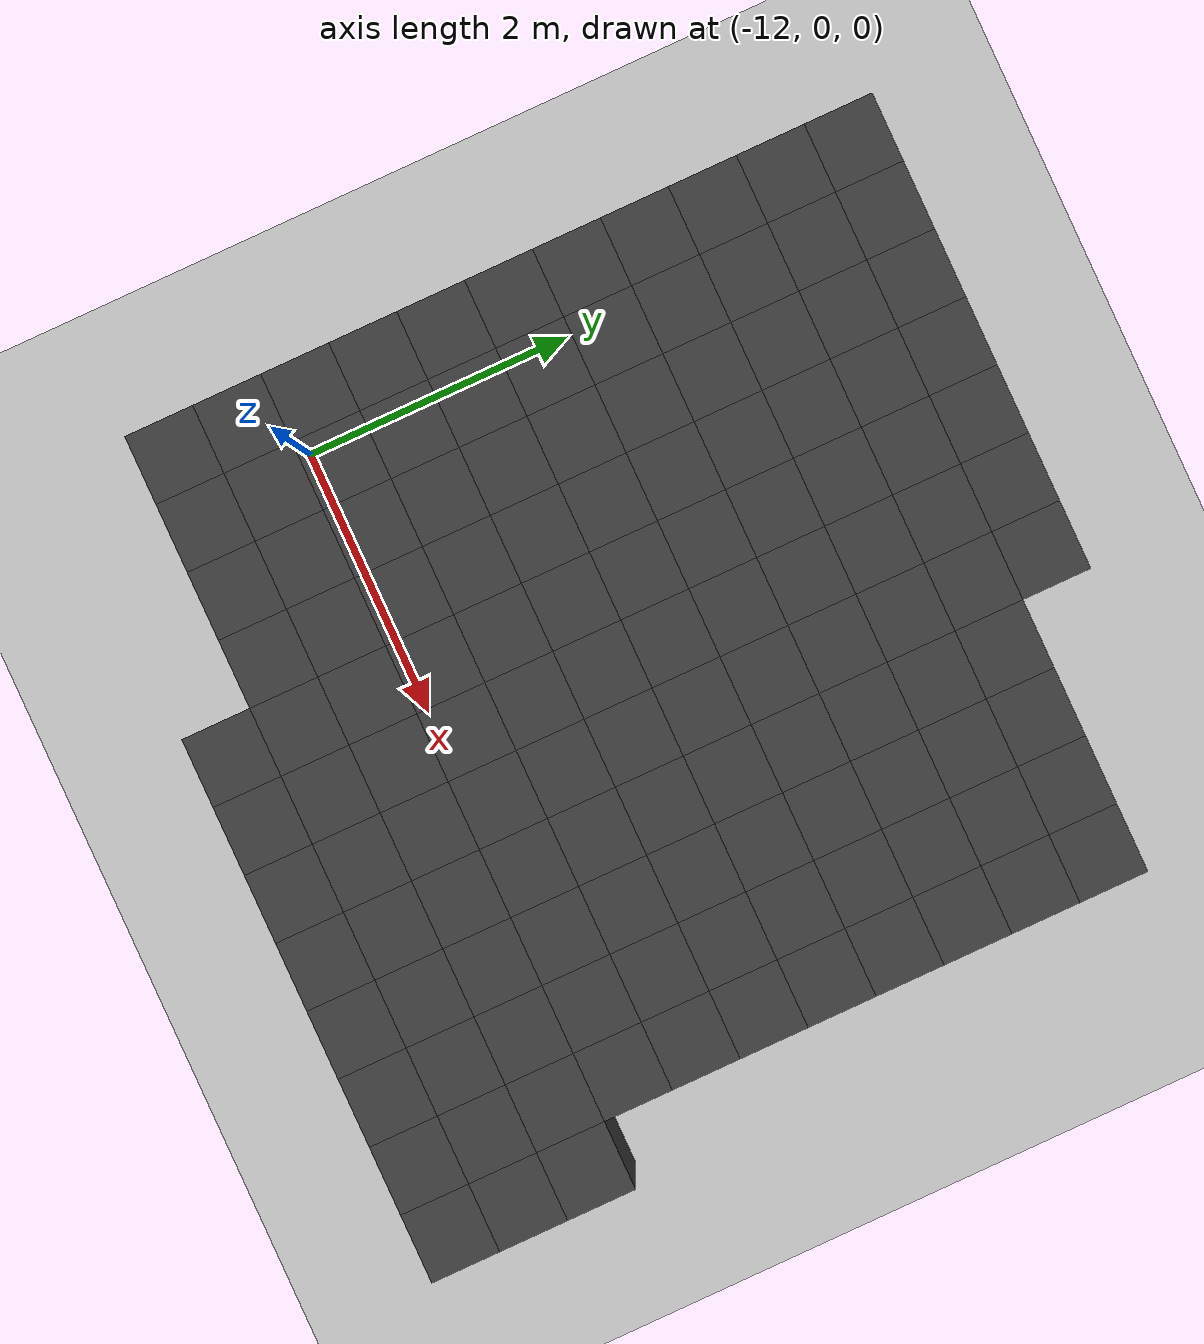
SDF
<sdf version="1.7">
 <world name="map_11672">
  <model name="ground_plane">
   <static>true</static>
   <link name="link">
    <collision name="collision">
     <geometry><plane><normal>0 0 1</normal><size>200 200</size></plane></geometry>
    </collision>
    <visual name="visual">
     <geometry><plane><normal>0 0 1</normal><size>200 200</size></plane></geometry>
     <material><ambient>0.8 0.8 0.8 1</ambient><diffuse>0.8 0.8 0.8 1</diffuse></material>
    </visual>
   </link>
  </model>
  <model name="maze_environment">
   <static>true</static>
   <link name="wall_625">
    <pose>-12.250 4.250 0.500 0 0 0</pose>
    <collision name="col"><geometry><box><size>0.5 0.5 1.0</size></box></geometry></collision>
    <visual name="vis">
     <geometry><box><size>0.5 0.5 1.0</size></box></geometry>
     <material><ambient>0.15 0.15 0.15 1</ambient><diffuse>0.25 0.25 0.25 1</diffuse></material>
    </visual>
   </link>
   <link name="wall_626">
    <pose>-11.750 4.250 0.500 0 0 0</pose>
    <collision name="col"><geometry><box><size>0.5 0.5 1.0</size></box></geometry></collision>
    <visual name="vis">
     <geometry><box><size>0.5 0.5 1.0</size></box></geometry>
     <material><ambient>0.15 0.15 0.15 1</ambient><diffuse>0.25 0.25 0.25 1</diffuse></material>
    </visual>
   </link>
   <link name="wall_627">
    <pose>-11.250 4.250 0.500 0 0 0</pose>
    <collision name="col"><geometry><box><size>0.5 0.5 1.0</size></box></geometry></collision>
    <visual name="vis">
     <geometry><box><size>0.5 0.5 1.0</size></box></geometry>
     <material><ambient>0.15 0.15 0.15 1</ambient><diffuse>0.25 0.25 0.25 1</diffuse></material>
    </visual>
   </link>
   <link name="wall_628">
    <pose>-10.750 4.250 0.500 0 0 0</pose>
    <collision name="col"><geometry><box><size>0.5 0.5 1.0</size></box></geometry></collision>
    <visual name="vis">
     <geometry><box><size>0.5 0.5 1.0</size></box></geometry>
     <material><ambient>0.15 0.15 0.15 1</ambient><diffuse>0.25 0.25 0.25 1</diffuse></material>
    </visual>
   </link>
   <link name="wall_629">
    <pose>-10.250 4.250 0.500 0 0 0</pose>
    <collision name="col"><geometry><box><size>0.5 0.5 1.0</size></box></geometry></collision>
    <visual name="vis">
     <geometry><box><size>0.5 0.5 1.0</size></box></geometry>
     <material><ambient>0.15 0.15 0.15 1</ambient><diffuse>0.25 0.25 0.25 1</diffuse></material>
    </visual>
   </link>
   <link name="wall_630">
    <pose>-9.750 4.250 0.500 0 0 0</pose>
    <collision name="col"><geometry><box><size>0.5 0.5 1.0</size></box></geometry></collision>
    <visual name="vis">
     <geometry><box><size>0.5 0.5 1.0</size></box></geometry>
     <material><ambient>0.15 0.15 0.15 1</ambient><diffuse>0.25 0.25 0.25 1</diffuse></material>
    </visual>
   </link>
   <link name="wall_631">
    <pose>-9.250 4.250 0.500 0 0 0</pose>
    <collision name="col"><geometry><box><size>0.5 0.5 1.0</size></box></geometry></collision>
    <visual name="vis">
     <geometry><box><size>0.5 0.5 1.0</size></box></geometry>
     <material><ambient>0.15 0.15 0.15 1</ambient><diffuse>0.25 0.25 0.25 1</diffuse></material>
    </visual>
   </link>
   <link name="wall_664">
    <pose>-12.250 3.750 0.500 0 0 0</pose>
    <collision name="col"><geometry><box><size>0.5 0.5 1.0</size></box></geometry></collision>
    <visual name="vis">
     <geometry><box><size>0.5 0.5 1.0</size></box></geometry>
     <material><ambient>0.15 0.15 0.15 1</ambient><diffuse>0.25 0.25 0.25 1</diffuse></material>
    </visual>
   </link>
   <link name="wall_665">
    <pose>-11.750 3.750 0.500 0 0 0</pose>
    <collision name="col"><geometry><box><size>0.5 0.5 1.0</size></box></geometry></collision>
    <visual name="vis">
     <geometry><box><size>0.5 0.5 1.0</size></box></geometry>
     <material><ambient>0.15 0.15 0.15 1</ambient><diffuse>0.25 0.25 0.25 1</diffuse></material>
    </visual>
   </link>
   <link name="wall_666">
    <pose>-11.250 3.750 0.500 0 0 0</pose>
    <collision name="col"><geometry><box><size>0.5 0.5 1.0</size></box></geometry></collision>
    <visual name="vis">
     <geometry><box><size>0.5 0.5 1.0</size></box></geometry>
     <material><ambient>0.15 0.15 0.15 1</ambient><diffuse>0.25 0.25 0.25 1</diffuse></material>
    </visual>
   </link>
   <link name="wall_667">
    <pose>-10.750 3.750 0.500 0 0 0</pose>
    <collision name="col"><geometry><box><size>0.5 0.5 1.0</size></box></geometry></collision>
    <visual name="vis">
     <geometry><box><size>0.5 0.5 1.0</size></box></geometry>
     <material><ambient>0.15 0.15 0.15 1</ambient><diffuse>0.25 0.25 0.25 1</diffuse></material>
    </visual>
   </link>
   <link name="wall_668">
    <pose>-10.250 3.750 0.500 0 0 0</pose>
    <collision name="col"><geometry><box><size>0.5 0.5 1.0</size></box></geometry></collision>
    <visual name="vis">
     <geometry><box><size>0.5 0.5 1.0</size></box></geometry>
     <material><ambient>0.15 0.15 0.15 1</ambient><diffuse>0.25 0.25 0.25 1</diffuse></material>
    </visual>
   </link>
   <link name="wall_669">
    <pose>-9.750 3.750 0.500 0 0 0</pose>
    <collision name="col"><geometry><box><size>0.5 0.5 1.0</size></box></geometry></collision>
    <visual name="vis">
     <geometry><box><size>0.5 0.5 1.0</size></box></geometry>
     <material><ambient>0.15 0.15 0.15 1</ambient><diffuse>0.25 0.25 0.25 1</diffuse></material>
    </visual>
   </link>
   <link name="wall_670">
    <pose>-9.250 3.750 0.500 0 0 0</pose>
    <collision name="col"><geometry><box><size>0.5 0.5 1.0</size></box></geometry></collision>
    <visual name="vis">
     <geometry><box><size>0.5 0.5 1.0</size></box></geometry>
     <material><ambient>0.15 0.15 0.15 1</ambient><diffuse>0.25 0.25 0.25 1</diffuse></material>
    </visual>
   </link>
   <link name="wall_671">
    <pose>-8.750 3.750 0.500 0 0 0</pose>
    <collision name="col"><geometry><box><size>0.5 0.5 1.0</size></box></geometry></collision>
    <visual name="vis">
     <geometry><box><size>0.5 0.5 1.0</size></box></geometry>
     <material><ambient>0.15 0.15 0.15 1</ambient><diffuse>0.25 0.25 0.25 1</diffuse></material>
    </visual>
   </link>
   <link name="wall_672">
    <pose>-8.250 3.750 0.500 0 0 0</pose>
    <collision name="col"><geometry><box><size>0.5 0.5 1.0</size></box></geometry></collision>
    <visual name="vis">
     <geometry><box><size>0.5 0.5 1.0</size></box></geometry>
     <material><ambient>0.15 0.15 0.15 1</ambient><diffuse>0.25 0.25 0.25 1</diffuse></material>
    </visual>
   </link>
   <link name="wall_673">
    <pose>-7.750 3.750 0.500 0 0 0</pose>
    <collision name="col"><geometry><box><size>0.5 0.5 1.0</size></box></geometry></collision>
    <visual name="vis">
     <geometry><box><size>0.5 0.5 1.0</size></box></geometry>
     <material><ambient>0.15 0.15 0.15 1</ambient><diffuse>0.25 0.25 0.25 1</diffuse></material>
    </visual>
   </link>
   <link name="wall_674">
    <pose>-7.250 3.750 0.500 0 0 0</pose>
    <collision name="col"><geometry><box><size>0.5 0.5 1.0</size></box></geometry></collision>
    <visual name="vis">
     <geometry><box><size>0.5 0.5 1.0</size></box></geometry>
     <material><ambient>0.15 0.15 0.15 1</ambient><diffuse>0.25 0.25 0.25 1</diffuse></material>
    </visual>
   </link>
   <link name="wall_708">
    <pose>-12.250 3.250 0.500 0 0 0</pose>
    <collision name="col"><geometry><box><size>0.5 0.5 1.0</size></box></geometry></collision>
    <visual name="vis">
     <geometry><box><size>0.5 0.5 1.0</size></box></geometry>
     <material><ambient>0.15 0.15 0.15 1</ambient><diffuse>0.25 0.25 0.25 1</diffuse></material>
    </visual>
   </link>
   <link name="wall_709">
    <pose>-11.750 3.250 0.500 0 0 0</pose>
    <collision name="col"><geometry><box><size>0.5 0.5 1.0</size></box></geometry></collision>
    <visual name="vis">
     <geometry><box><size>0.5 0.5 1.0</size></box></geometry>
     <material><ambient>0.15 0.15 0.15 1</ambient><diffuse>0.25 0.25 0.25 1</diffuse></material>
    </visual>
   </link>
   <link name="wall_710">
    <pose>-11.250 3.250 0.500 0 0 0</pose>
    <collision name="col"><geometry><box><size>0.5 0.5 1.0</size></box></geometry></collision>
    <visual name="vis">
     <geometry><box><size>0.5 0.5 1.0</size></box></geometry>
     <material><ambient>0.15 0.15 0.15 1</ambient><diffuse>0.25 0.25 0.25 1</diffuse></material>
    </visual>
   </link>
   <link name="wall_711">
    <pose>-10.750 3.250 0.500 0 0 0</pose>
    <collision name="col"><geometry><box><size>0.5 0.5 1.0</size></box></geometry></collision>
    <visual name="vis">
     <geometry><box><size>0.5 0.5 1.0</size></box></geometry>
     <material><ambient>0.15 0.15 0.15 1</ambient><diffuse>0.25 0.25 0.25 1</diffuse></material>
    </visual>
   </link>
   <link name="wall_712">
    <pose>-10.250 3.250 0.500 0 0 0</pose>
    <collision name="col"><geometry><box><size>0.5 0.5 1.0</size></box></geometry></collision>
    <visual name="vis">
     <geometry><box><size>0.5 0.5 1.0</size></box></geometry>
     <material><ambient>0.15 0.15 0.15 1</ambient><diffuse>0.25 0.25 0.25 1</diffuse></material>
    </visual>
   </link>
   <link name="wall_713">
    <pose>-9.750 3.250 0.500 0 0 0</pose>
    <collision name="col"><geometry><box><size>0.5 0.5 1.0</size></box></geometry></collision>
    <visual name="vis">
     <geometry><box><size>0.5 0.5 1.0</size></box></geometry>
     <material><ambient>0.15 0.15 0.15 1</ambient><diffuse>0.25 0.25 0.25 1</diffuse></material>
    </visual>
   </link>
   <link name="wall_714">
    <pose>-9.250 3.250 0.500 0 0 0</pose>
    <collision name="col"><geometry><box><size>0.5 0.5 1.0</size></box></geometry></collision>
    <visual name="vis">
     <geometry><box><size>0.5 0.5 1.0</size></box></geometry>
     <material><ambient>0.15 0.15 0.15 1</ambient><diffuse>0.25 0.25 0.25 1</diffuse></material>
    </visual>
   </link>
   <link name="wall_715">
    <pose>-8.750 3.250 0.500 0 0 0</pose>
    <collision name="col"><geometry><box><size>0.5 0.5 1.0</size></box></geometry></collision>
    <visual name="vis">
     <geometry><box><size>0.5 0.5 1.0</size></box></geometry>
     <material><ambient>0.15 0.15 0.15 1</ambient><diffuse>0.25 0.25 0.25 1</diffuse></material>
    </visual>
   </link>
   <link name="wall_716">
    <pose>-8.250 3.250 0.500 0 0 0</pose>
    <collision name="col"><geometry><box><size>0.5 0.5 1.0</size></box></geometry></collision>
    <visual name="vis">
     <geometry><box><size>0.5 0.5 1.0</size></box></geometry>
     <material><ambient>0.15 0.15 0.15 1</ambient><diffuse>0.25 0.25 0.25 1</diffuse></material>
    </visual>
   </link>
   <link name="wall_717">
    <pose>-7.750 3.250 0.500 0 0 0</pose>
    <collision name="col"><geometry><box><size>0.5 0.5 1.0</size></box></geometry></collision>
    <visual name="vis">
     <geometry><box><size>0.5 0.5 1.0</size></box></geometry>
     <material><ambient>0.15 0.15 0.15 1</ambient><diffuse>0.25 0.25 0.25 1</diffuse></material>
    </visual>
   </link>
   <link name="wall_718">
    <pose>-7.250 3.250 0.500 0 0 0</pose>
    <collision name="col"><geometry><box><size>0.5 0.5 1.0</size></box></geometry></collision>
    <visual name="vis">
     <geometry><box><size>0.5 0.5 1.0</size></box></geometry>
     <material><ambient>0.15 0.15 0.15 1</ambient><diffuse>0.25 0.25 0.25 1</diffuse></material>
    </visual>
   </link>
   <link name="wall_748">
    <pose>-12.250 2.750 0.500 0 0 0</pose>
    <collision name="col"><geometry><box><size>0.5 0.5 1.0</size></box></geometry></collision>
    <visual name="vis">
     <geometry><box><size>0.5 0.5 1.0</size></box></geometry>
     <material><ambient>0.15 0.15 0.15 1</ambient><diffuse>0.25 0.25 0.25 1</diffuse></material>
    </visual>
   </link>
   <link name="wall_749">
    <pose>-11.750 2.750 0.500 0 0 0</pose>
    <collision name="col"><geometry><box><size>0.5 0.5 1.0</size></box></geometry></collision>
    <visual name="vis">
     <geometry><box><size>0.5 0.5 1.0</size></box></geometry>
     <material><ambient>0.15 0.15 0.15 1</ambient><diffuse>0.25 0.25 0.25 1</diffuse></material>
    </visual>
   </link>
   <link name="wall_750">
    <pose>-11.250 2.750 0.500 0 0 0</pose>
    <collision name="col"><geometry><box><size>0.5 0.5 1.0</size></box></geometry></collision>
    <visual name="vis">
     <geometry><box><size>0.5 0.5 1.0</size></box></geometry>
     <material><ambient>0.15 0.15 0.15 1</ambient><diffuse>0.25 0.25 0.25 1</diffuse></material>
    </visual>
   </link>
   <link name="wall_751">
    <pose>-10.750 2.750 0.500 0 0 0</pose>
    <collision name="col"><geometry><box><size>0.5 0.5 1.0</size></box></geometry></collision>
    <visual name="vis">
     <geometry><box><size>0.5 0.5 1.0</size></box></geometry>
     <material><ambient>0.15 0.15 0.15 1</ambient><diffuse>0.25 0.25 0.25 1</diffuse></material>
    </visual>
   </link>
   <link name="wall_752">
    <pose>-10.250 2.750 0.500 0 0 0</pose>
    <collision name="col"><geometry><box><size>0.5 0.5 1.0</size></box></geometry></collision>
    <visual name="vis">
     <geometry><box><size>0.5 0.5 1.0</size></box></geometry>
     <material><ambient>0.15 0.15 0.15 1</ambient><diffuse>0.25 0.25 0.25 1</diffuse></material>
    </visual>
   </link>
   <link name="wall_753">
    <pose>-9.750 2.750 0.500 0 0 0</pose>
    <collision name="col"><geometry><box><size>0.5 0.5 1.0</size></box></geometry></collision>
    <visual name="vis">
     <geometry><box><size>0.5 0.5 1.0</size></box></geometry>
     <material><ambient>0.15 0.15 0.15 1</ambient><diffuse>0.25 0.25 0.25 1</diffuse></material>
    </visual>
   </link>
   <link name="wall_754">
    <pose>-9.250 2.750 0.500 0 0 0</pose>
    <collision name="col"><geometry><box><size>0.5 0.5 1.0</size></box></geometry></collision>
    <visual name="vis">
     <geometry><box><size>0.5 0.5 1.0</size></box></geometry>
     <material><ambient>0.15 0.15 0.15 1</ambient><diffuse>0.25 0.25 0.25 1</diffuse></material>
    </visual>
   </link>
   <link name="wall_755">
    <pose>-8.750 2.750 0.500 0 0 0</pose>
    <collision name="col"><geometry><box><size>0.5 0.5 1.0</size></box></geometry></collision>
    <visual name="vis">
     <geometry><box><size>0.5 0.5 1.0</size></box></geometry>
     <material><ambient>0.15 0.15 0.15 1</ambient><diffuse>0.25 0.25 0.25 1</diffuse></material>
    </visual>
   </link>
   <link name="wall_756">
    <pose>-8.250 2.750 0.500 0 0 0</pose>
    <collision name="col"><geometry><box><size>0.5 0.5 1.0</size></box></geometry></collision>
    <visual name="vis">
     <geometry><box><size>0.5 0.5 1.0</size></box></geometry>
     <material><ambient>0.15 0.15 0.15 1</ambient><diffuse>0.25 0.25 0.25 1</diffuse></material>
    </visual>
   </link>
   <link name="wall_757">
    <pose>-7.750 2.750 0.500 0 0 0</pose>
    <collision name="col"><geometry><box><size>0.5 0.5 1.0</size></box></geometry></collision>
    <visual name="vis">
     <geometry><box><size>0.5 0.5 1.0</size></box></geometry>
     <material><ambient>0.15 0.15 0.15 1</ambient><diffuse>0.25 0.25 0.25 1</diffuse></material>
    </visual>
   </link>
   <link name="wall_758">
    <pose>-7.250 2.750 0.500 0 0 0</pose>
    <collision name="col"><geometry><box><size>0.5 0.5 1.0</size></box></geometry></collision>
    <visual name="vis">
     <geometry><box><size>0.5 0.5 1.0</size></box></geometry>
     <material><ambient>0.15 0.15 0.15 1</ambient><diffuse>0.25 0.25 0.25 1</diffuse></material>
    </visual>
   </link>
   <link name="wall_788">
    <pose>-12.250 2.250 0.500 0 0 0</pose>
    <collision name="col"><geometry><box><size>0.5 0.5 1.0</size></box></geometry></collision>
    <visual name="vis">
     <geometry><box><size>0.5 0.5 1.0</size></box></geometry>
     <material><ambient>0.15 0.15 0.15 1</ambient><diffuse>0.25 0.25 0.25 1</diffuse></material>
    </visual>
   </link>
   <link name="wall_789">
    <pose>-11.750 2.250 0.500 0 0 0</pose>
    <collision name="col"><geometry><box><size>0.5 0.5 1.0</size></box></geometry></collision>
    <visual name="vis">
     <geometry><box><size>0.5 0.5 1.0</size></box></geometry>
     <material><ambient>0.15 0.15 0.15 1</ambient><diffuse>0.25 0.25 0.25 1</diffuse></material>
    </visual>
   </link>
   <link name="wall_790">
    <pose>-11.250 2.250 0.500 0 0 0</pose>
    <collision name="col"><geometry><box><size>0.5 0.5 1.0</size></box></geometry></collision>
    <visual name="vis">
     <geometry><box><size>0.5 0.5 1.0</size></box></geometry>
     <material><ambient>0.15 0.15 0.15 1</ambient><diffuse>0.25 0.25 0.25 1</diffuse></material>
    </visual>
   </link>
   <link name="wall_791">
    <pose>-10.750 2.250 0.500 0 0 0</pose>
    <collision name="col"><geometry><box><size>0.5 0.5 1.0</size></box></geometry></collision>
    <visual name="vis">
     <geometry><box><size>0.5 0.5 1.0</size></box></geometry>
     <material><ambient>0.15 0.15 0.15 1</ambient><diffuse>0.25 0.25 0.25 1</diffuse></material>
    </visual>
   </link>
   <link name="wall_792">
    <pose>-10.250 2.250 0.500 0 0 0</pose>
    <collision name="col"><geometry><box><size>0.5 0.5 1.0</size></box></geometry></collision>
    <visual name="vis">
     <geometry><box><size>0.5 0.5 1.0</size></box></geometry>
     <material><ambient>0.15 0.15 0.15 1</ambient><diffuse>0.25 0.25 0.25 1</diffuse></material>
    </visual>
   </link>
   <link name="wall_793">
    <pose>-9.750 2.250 0.500 0 0 0</pose>
    <collision name="col"><geometry><box><size>0.5 0.5 1.0</size></box></geometry></collision>
    <visual name="vis">
     <geometry><box><size>0.5 0.5 1.0</size></box></geometry>
     <material><ambient>0.15 0.15 0.15 1</ambient><diffuse>0.25 0.25 0.25 1</diffuse></material>
    </visual>
   </link>
   <link name="wall_794">
    <pose>-9.250 2.250 0.500 0 0 0</pose>
    <collision name="col"><geometry><box><size>0.5 0.5 1.0</size></box></geometry></collision>
    <visual name="vis">
     <geometry><box><size>0.5 0.5 1.0</size></box></geometry>
     <material><ambient>0.15 0.15 0.15 1</ambient><diffuse>0.25 0.25 0.25 1</diffuse></material>
    </visual>
   </link>
   <link name="wall_795">
    <pose>-8.750 2.250 0.500 0 0 0</pose>
    <collision name="col"><geometry><box><size>0.5 0.5 1.0</size></box></geometry></collision>
    <visual name="vis">
     <geometry><box><size>0.5 0.5 1.0</size></box></geometry>
     <material><ambient>0.15 0.15 0.15 1</ambient><diffuse>0.25 0.25 0.25 1</diffuse></material>
    </visual>
   </link>
   <link name="wall_796">
    <pose>-8.250 2.250 0.500 0 0 0</pose>
    <collision name="col"><geometry><box><size>0.5 0.5 1.0</size></box></geometry></collision>
    <visual name="vis">
     <geometry><box><size>0.5 0.5 1.0</size></box></geometry>
     <material><ambient>0.15 0.15 0.15 1</ambient><diffuse>0.25 0.25 0.25 1</diffuse></material>
    </visual>
   </link>
   <link name="wall_797">
    <pose>-7.750 2.250 0.500 0 0 0</pose>
    <collision name="col"><geometry><box><size>0.5 0.5 1.0</size></box></geometry></collision>
    <visual name="vis">
     <geometry><box><size>0.5 0.5 1.0</size></box></geometry>
     <material><ambient>0.15 0.15 0.15 1</ambient><diffuse>0.25 0.25 0.25 1</diffuse></material>
    </visual>
   </link>
   <link name="wall_798">
    <pose>-7.250 2.250 0.500 0 0 0</pose>
    <collision name="col"><geometry><box><size>0.5 0.5 1.0</size></box></geometry></collision>
    <visual name="vis">
     <geometry><box><size>0.5 0.5 1.0</size></box></geometry>
     <material><ambient>0.15 0.15 0.15 1</ambient><diffuse>0.25 0.25 0.25 1</diffuse></material>
    </visual>
   </link>
   <link name="wall_833">
    <pose>-12.250 1.750 0.500 0 0 0</pose>
    <collision name="col"><geometry><box><size>0.5 0.5 1.0</size></box></geometry></collision>
    <visual name="vis">
     <geometry><box><size>0.5 0.5 1.0</size></box></geometry>
     <material><ambient>0.15 0.15 0.15 1</ambient><diffuse>0.25 0.25 0.25 1</diffuse></material>
    </visual>
   </link>
   <link name="wall_834">
    <pose>-11.750 1.750 0.500 0 0 0</pose>
    <collision name="col"><geometry><box><size>0.5 0.5 1.0</size></box></geometry></collision>
    <visual name="vis">
     <geometry><box><size>0.5 0.5 1.0</size></box></geometry>
     <material><ambient>0.15 0.15 0.15 1</ambient><diffuse>0.25 0.25 0.25 1</diffuse></material>
    </visual>
   </link>
   <link name="wall_835">
    <pose>-11.250 1.750 0.500 0 0 0</pose>
    <collision name="col"><geometry><box><size>0.5 0.5 1.0</size></box></geometry></collision>
    <visual name="vis">
     <geometry><box><size>0.5 0.5 1.0</size></box></geometry>
     <material><ambient>0.15 0.15 0.15 1</ambient><diffuse>0.25 0.25 0.25 1</diffuse></material>
    </visual>
   </link>
   <link name="wall_836">
    <pose>-10.750 1.750 0.500 0 0 0</pose>
    <collision name="col"><geometry><box><size>0.5 0.5 1.0</size></box></geometry></collision>
    <visual name="vis">
     <geometry><box><size>0.5 0.5 1.0</size></box></geometry>
     <material><ambient>0.15 0.15 0.15 1</ambient><diffuse>0.25 0.25 0.25 1</diffuse></material>
    </visual>
   </link>
   <link name="wall_837">
    <pose>-10.250 1.750 0.500 0 0 0</pose>
    <collision name="col"><geometry><box><size>0.5 0.5 1.0</size></box></geometry></collision>
    <visual name="vis">
     <geometry><box><size>0.5 0.5 1.0</size></box></geometry>
     <material><ambient>0.15 0.15 0.15 1</ambient><diffuse>0.25 0.25 0.25 1</diffuse></material>
    </visual>
   </link>
   <link name="wall_838">
    <pose>-9.750 1.750 0.500 0 0 0</pose>
    <collision name="col"><geometry><box><size>0.5 0.5 1.0</size></box></geometry></collision>
    <visual name="vis">
     <geometry><box><size>0.5 0.5 1.0</size></box></geometry>
     <material><ambient>0.15 0.15 0.15 1</ambient><diffuse>0.25 0.25 0.25 1</diffuse></material>
    </visual>
   </link>
   <link name="wall_839">
    <pose>-9.250 1.750 0.500 0 0 0</pose>
    <collision name="col"><geometry><box><size>0.5 0.5 1.0</size></box></geometry></collision>
    <visual name="vis">
     <geometry><box><size>0.5 0.5 1.0</size></box></geometry>
     <material><ambient>0.15 0.15 0.15 1</ambient><diffuse>0.25 0.25 0.25 1</diffuse></material>
    </visual>
   </link>
   <link name="wall_840">
    <pose>-8.750 1.750 0.500 0 0 0</pose>
    <collision name="col"><geometry><box><size>0.5 0.5 1.0</size></box></geometry></collision>
    <visual name="vis">
     <geometry><box><size>0.5 0.5 1.0</size></box></geometry>
     <material><ambient>0.15 0.15 0.15 1</ambient><diffuse>0.25 0.25 0.25 1</diffuse></material>
    </visual>
   </link>
   <link name="wall_841">
    <pose>-8.250 1.750 0.500 0 0 0</pose>
    <collision name="col"><geometry><box><size>0.5 0.5 1.0</size></box></geometry></collision>
    <visual name="vis">
     <geometry><box><size>0.5 0.5 1.0</size></box></geometry>
     <material><ambient>0.15 0.15 0.15 1</ambient><diffuse>0.25 0.25 0.25 1</diffuse></material>
    </visual>
   </link>
   <link name="wall_842">
    <pose>-7.750 1.750 0.500 0 0 0</pose>
    <collision name="col"><geometry><box><size>0.5 0.5 1.0</size></box></geometry></collision>
    <visual name="vis">
     <geometry><box><size>0.5 0.5 1.0</size></box></geometry>
     <material><ambient>0.15 0.15 0.15 1</ambient><diffuse>0.25 0.25 0.25 1</diffuse></material>
    </visual>
   </link>
   <link name="wall_843">
    <pose>-7.250 1.750 0.500 0 0 0</pose>
    <collision name="col"><geometry><box><size>0.5 0.5 1.0</size></box></geometry></collision>
    <visual name="vis">
     <geometry><box><size>0.5 0.5 1.0</size></box></geometry>
     <material><ambient>0.15 0.15 0.15 1</ambient><diffuse>0.25 0.25 0.25 1</diffuse></material>
    </visual>
   </link>
   <link name="wall_868">
    <pose>-12.250 1.250 0.500 0 0 0</pose>
    <collision name="col"><geometry><box><size>0.5 0.5 1.0</size></box></geometry></collision>
    <visual name="vis">
     <geometry><box><size>0.5 0.5 1.0</size></box></geometry>
     <material><ambient>0.15 0.15 0.15 1</ambient><diffuse>0.25 0.25 0.25 1</diffuse></material>
    </visual>
   </link>
   <link name="wall_869">
    <pose>-11.750 1.250 0.500 0 0 0</pose>
    <collision name="col"><geometry><box><size>0.5 0.5 1.0</size></box></geometry></collision>
    <visual name="vis">
     <geometry><box><size>0.5 0.5 1.0</size></box></geometry>
     <material><ambient>0.15 0.15 0.15 1</ambient><diffuse>0.25 0.25 0.25 1</diffuse></material>
    </visual>
   </link>
   <link name="wall_870">
    <pose>-11.250 1.250 0.500 0 0 0</pose>
    <collision name="col"><geometry><box><size>0.5 0.5 1.0</size></box></geometry></collision>
    <visual name="vis">
     <geometry><box><size>0.5 0.5 1.0</size></box></geometry>
     <material><ambient>0.15 0.15 0.15 1</ambient><diffuse>0.25 0.25 0.25 1</diffuse></material>
    </visual>
   </link>
   <link name="wall_871">
    <pose>-10.750 1.250 0.500 0 0 0</pose>
    <collision name="col"><geometry><box><size>0.5 0.5 1.0</size></box></geometry></collision>
    <visual name="vis">
     <geometry><box><size>0.5 0.5 1.0</size></box></geometry>
     <material><ambient>0.15 0.15 0.15 1</ambient><diffuse>0.25 0.25 0.25 1</diffuse></material>
    </visual>
   </link>
   <link name="wall_872">
    <pose>-10.250 1.250 0.500 0 0 0</pose>
    <collision name="col"><geometry><box><size>0.5 0.5 1.0</size></box></geometry></collision>
    <visual name="vis">
     <geometry><box><size>0.5 0.5 1.0</size></box></geometry>
     <material><ambient>0.15 0.15 0.15 1</ambient><diffuse>0.25 0.25 0.25 1</diffuse></material>
    </visual>
   </link>
   <link name="wall_873">
    <pose>-9.750 1.250 0.500 0 0 0</pose>
    <collision name="col"><geometry><box><size>0.5 0.5 1.0</size></box></geometry></collision>
    <visual name="vis">
     <geometry><box><size>0.5 0.5 1.0</size></box></geometry>
     <material><ambient>0.15 0.15 0.15 1</ambient><diffuse>0.25 0.25 0.25 1</diffuse></material>
    </visual>
   </link>
   <link name="wall_874">
    <pose>-9.250 1.250 0.500 0 0 0</pose>
    <collision name="col"><geometry><box><size>0.5 0.5 1.0</size></box></geometry></collision>
    <visual name="vis">
     <geometry><box><size>0.5 0.5 1.0</size></box></geometry>
     <material><ambient>0.15 0.15 0.15 1</ambient><diffuse>0.25 0.25 0.25 1</diffuse></material>
    </visual>
   </link>
   <link name="wall_875">
    <pose>-8.750 1.250 0.500 0 0 0</pose>
    <collision name="col"><geometry><box><size>0.5 0.5 1.0</size></box></geometry></collision>
    <visual name="vis">
     <geometry><box><size>0.5 0.5 1.0</size></box></geometry>
     <material><ambient>0.15 0.15 0.15 1</ambient><diffuse>0.25 0.25 0.25 1</diffuse></material>
    </visual>
   </link>
   <link name="wall_876">
    <pose>-8.250 1.250 0.500 0 0 0</pose>
    <collision name="col"><geometry><box><size>0.5 0.5 1.0</size></box></geometry></collision>
    <visual name="vis">
     <geometry><box><size>0.5 0.5 1.0</size></box></geometry>
     <material><ambient>0.15 0.15 0.15 1</ambient><diffuse>0.25 0.25 0.25 1</diffuse></material>
    </visual>
   </link>
   <link name="wall_877">
    <pose>-7.750 1.250 0.500 0 0 0</pose>
    <collision name="col"><geometry><box><size>0.5 0.5 1.0</size></box></geometry></collision>
    <visual name="vis">
     <geometry><box><size>0.5 0.5 1.0</size></box></geometry>
     <material><ambient>0.15 0.15 0.15 1</ambient><diffuse>0.25 0.25 0.25 1</diffuse></material>
    </visual>
   </link>
   <link name="wall_878">
    <pose>-7.250 1.250 0.500 0 0 0</pose>
    <collision name="col"><geometry><box><size>0.5 0.5 1.0</size></box></geometry></collision>
    <visual name="vis">
     <geometry><box><size>0.5 0.5 1.0</size></box></geometry>
     <material><ambient>0.15 0.15 0.15 1</ambient><diffuse>0.25 0.25 0.25 1</diffuse></material>
    </visual>
   </link>
   <link name="wall_913">
    <pose>-12.250 0.750 0.500 0 0 0</pose>
    <collision name="col"><geometry><box><size>0.5 0.5 1.0</size></box></geometry></collision>
    <visual name="vis">
     <geometry><box><size>0.5 0.5 1.0</size></box></geometry>
     <material><ambient>0.15 0.15 0.15 1</ambient><diffuse>0.25 0.25 0.25 1</diffuse></material>
    </visual>
   </link>
   <link name="wall_914">
    <pose>-11.750 0.750 0.500 0 0 0</pose>
    <collision name="col"><geometry><box><size>0.5 0.5 1.0</size></box></geometry></collision>
    <visual name="vis">
     <geometry><box><size>0.5 0.5 1.0</size></box></geometry>
     <material><ambient>0.15 0.15 0.15 1</ambient><diffuse>0.25 0.25 0.25 1</diffuse></material>
    </visual>
   </link>
   <link name="wall_915">
    <pose>-11.250 0.750 0.500 0 0 0</pose>
    <collision name="col"><geometry><box><size>0.5 0.5 1.0</size></box></geometry></collision>
    <visual name="vis">
     <geometry><box><size>0.5 0.5 1.0</size></box></geometry>
     <material><ambient>0.15 0.15 0.15 1</ambient><diffuse>0.25 0.25 0.25 1</diffuse></material>
    </visual>
   </link>
   <link name="wall_916">
    <pose>-10.750 0.750 0.500 0 0 0</pose>
    <collision name="col"><geometry><box><size>0.5 0.5 1.0</size></box></geometry></collision>
    <visual name="vis">
     <geometry><box><size>0.5 0.5 1.0</size></box></geometry>
     <material><ambient>0.15 0.15 0.15 1</ambient><diffuse>0.25 0.25 0.25 1</diffuse></material>
    </visual>
   </link>
   <link name="wall_917">
    <pose>-10.250 0.750 0.500 0 0 0</pose>
    <collision name="col"><geometry><box><size>0.5 0.5 1.0</size></box></geometry></collision>
    <visual name="vis">
     <geometry><box><size>0.5 0.5 1.0</size></box></geometry>
     <material><ambient>0.15 0.15 0.15 1</ambient><diffuse>0.25 0.25 0.25 1</diffuse></material>
    </visual>
   </link>
   <link name="wall_918">
    <pose>-9.750 0.750 0.500 0 0 0</pose>
    <collision name="col"><geometry><box><size>0.5 0.5 1.0</size></box></geometry></collision>
    <visual name="vis">
     <geometry><box><size>0.5 0.5 1.0</size></box></geometry>
     <material><ambient>0.15 0.15 0.15 1</ambient><diffuse>0.25 0.25 0.25 1</diffuse></material>
    </visual>
   </link>
   <link name="wall_919">
    <pose>-9.250 0.750 0.500 0 0 0</pose>
    <collision name="col"><geometry><box><size>0.5 0.5 1.0</size></box></geometry></collision>
    <visual name="vis">
     <geometry><box><size>0.5 0.5 1.0</size></box></geometry>
     <material><ambient>0.15 0.15 0.15 1</ambient><diffuse>0.25 0.25 0.25 1</diffuse></material>
    </visual>
   </link>
   <link name="wall_920">
    <pose>-8.750 0.750 0.500 0 0 0</pose>
    <collision name="col"><geometry><box><size>0.5 0.5 1.0</size></box></geometry></collision>
    <visual name="vis">
     <geometry><box><size>0.5 0.5 1.0</size></box></geometry>
     <material><ambient>0.15 0.15 0.15 1</ambient><diffuse>0.25 0.25 0.25 1</diffuse></material>
    </visual>
   </link>
   <link name="wall_921">
    <pose>-8.250 0.750 0.500 0 0 0</pose>
    <collision name="col"><geometry><box><size>0.5 0.5 1.0</size></box></geometry></collision>
    <visual name="vis">
     <geometry><box><size>0.5 0.5 1.0</size></box></geometry>
     <material><ambient>0.15 0.15 0.15 1</ambient><diffuse>0.25 0.25 0.25 1</diffuse></material>
    </visual>
   </link>
   <link name="wall_922">
    <pose>-7.750 0.750 0.500 0 0 0</pose>
    <collision name="col"><geometry><box><size>0.5 0.5 1.0</size></box></geometry></collision>
    <visual name="vis">
     <geometry><box><size>0.5 0.5 1.0</size></box></geometry>
     <material><ambient>0.15 0.15 0.15 1</ambient><diffuse>0.25 0.25 0.25 1</diffuse></material>
    </visual>
   </link>
   <link name="wall_923">
    <pose>-7.250 0.750 0.500 0 0 0</pose>
    <collision name="col"><geometry><box><size>0.5 0.5 1.0</size></box></geometry></collision>
    <visual name="vis">
     <geometry><box><size>0.5 0.5 1.0</size></box></geometry>
     <material><ambient>0.15 0.15 0.15 1</ambient><diffuse>0.25 0.25 0.25 1</diffuse></material>
    </visual>
   </link>
   <link name="wall_958">
    <pose>-12.250 0.250 0.500 0 0 0</pose>
    <collision name="col"><geometry><box><size>0.5 0.5 1.0</size></box></geometry></collision>
    <visual name="vis">
     <geometry><box><size>0.5 0.5 1.0</size></box></geometry>
     <material><ambient>0.15 0.15 0.15 1</ambient><diffuse>0.25 0.25 0.25 1</diffuse></material>
    </visual>
   </link>
   <link name="wall_959">
    <pose>-11.750 0.250 0.500 0 0 0</pose>
    <collision name="col"><geometry><box><size>0.5 0.5 1.0</size></box></geometry></collision>
    <visual name="vis">
     <geometry><box><size>0.5 0.5 1.0</size></box></geometry>
     <material><ambient>0.15 0.15 0.15 1</ambient><diffuse>0.25 0.25 0.25 1</diffuse></material>
    </visual>
   </link>
   <link name="wall_960">
    <pose>-11.250 0.250 0.500 0 0 0</pose>
    <collision name="col"><geometry><box><size>0.5 0.5 1.0</size></box></geometry></collision>
    <visual name="vis">
     <geometry><box><size>0.5 0.5 1.0</size></box></geometry>
     <material><ambient>0.15 0.15 0.15 1</ambient><diffuse>0.25 0.25 0.25 1</diffuse></material>
    </visual>
   </link>
   <link name="wall_961">
    <pose>-10.750 0.250 0.500 0 0 0</pose>
    <collision name="col"><geometry><box><size>0.5 0.5 1.0</size></box></geometry></collision>
    <visual name="vis">
     <geometry><box><size>0.5 0.5 1.0</size></box></geometry>
     <material><ambient>0.15 0.15 0.15 1</ambient><diffuse>0.25 0.25 0.25 1</diffuse></material>
    </visual>
   </link>
   <link name="wall_962">
    <pose>-10.250 0.250 0.500 0 0 0</pose>
    <collision name="col"><geometry><box><size>0.5 0.5 1.0</size></box></geometry></collision>
    <visual name="vis">
     <geometry><box><size>0.5 0.5 1.0</size></box></geometry>
     <material><ambient>0.15 0.15 0.15 1</ambient><diffuse>0.25 0.25 0.25 1</diffuse></material>
    </visual>
   </link>
   <link name="wall_963">
    <pose>-9.750 0.250 0.500 0 0 0</pose>
    <collision name="col"><geometry><box><size>0.5 0.5 1.0</size></box></geometry></collision>
    <visual name="vis">
     <geometry><box><size>0.5 0.5 1.0</size></box></geometry>
     <material><ambient>0.15 0.15 0.15 1</ambient><diffuse>0.25 0.25 0.25 1</diffuse></material>
    </visual>
   </link>
   <link name="wall_964">
    <pose>-9.250 0.250 0.500 0 0 0</pose>
    <collision name="col"><geometry><box><size>0.5 0.5 1.0</size></box></geometry></collision>
    <visual name="vis">
     <geometry><box><size>0.5 0.5 1.0</size></box></geometry>
     <material><ambient>0.15 0.15 0.15 1</ambient><diffuse>0.25 0.25 0.25 1</diffuse></material>
    </visual>
   </link>
   <link name="wall_965">
    <pose>-8.750 0.250 0.500 0 0 0</pose>
    <collision name="col"><geometry><box><size>0.5 0.5 1.0</size></box></geometry></collision>
    <visual name="vis">
     <geometry><box><size>0.5 0.5 1.0</size></box></geometry>
     <material><ambient>0.15 0.15 0.15 1</ambient><diffuse>0.25 0.25 0.25 1</diffuse></material>
    </visual>
   </link>
   <link name="wall_966">
    <pose>-8.250 0.250 0.500 0 0 0</pose>
    <collision name="col"><geometry><box><size>0.5 0.5 1.0</size></box></geometry></collision>
    <visual name="vis">
     <geometry><box><size>0.5 0.5 1.0</size></box></geometry>
     <material><ambient>0.15 0.15 0.15 1</ambient><diffuse>0.25 0.25 0.25 1</diffuse></material>
    </visual>
   </link>
   <link name="wall_967">
    <pose>-7.750 0.250 0.500 0 0 0</pose>
    <collision name="col"><geometry><box><size>0.5 0.5 1.0</size></box></geometry></collision>
    <visual name="vis">
     <geometry><box><size>0.5 0.5 1.0</size></box></geometry>
     <material><ambient>0.15 0.15 0.15 1</ambient><diffuse>0.25 0.25 0.25 1</diffuse></material>
    </visual>
   </link>
   <link name="wall_968">
    <pose>-7.250 0.250 0.500 0 0 0</pose>
    <collision name="col"><geometry><box><size>0.5 0.5 1.0</size></box></geometry></collision>
    <visual name="vis">
     <geometry><box><size>0.5 0.5 1.0</size></box></geometry>
     <material><ambient>0.15 0.15 0.15 1</ambient><diffuse>0.25 0.25 0.25 1</diffuse></material>
    </visual>
   </link>
   <link name="wall_1003">
    <pose>-12.250 -0.250 0.500 0 0 0</pose>
    <collision name="col"><geometry><box><size>0.5 0.5 1.0</size></box></geometry></collision>
    <visual name="vis">
     <geometry><box><size>0.5 0.5 1.0</size></box></geometry>
     <material><ambient>0.15 0.15 0.15 1</ambient><diffuse>0.25 0.25 0.25 1</diffuse></material>
    </visual>
   </link>
   <link name="wall_1004">
    <pose>-11.750 -0.250 0.500 0 0 0</pose>
    <collision name="col"><geometry><box><size>0.5 0.5 1.0</size></box></geometry></collision>
    <visual name="vis">
     <geometry><box><size>0.5 0.5 1.0</size></box></geometry>
     <material><ambient>0.15 0.15 0.15 1</ambient><diffuse>0.25 0.25 0.25 1</diffuse></material>
    </visual>
   </link>
   <link name="wall_1005">
    <pose>-11.250 -0.250 0.500 0 0 0</pose>
    <collision name="col"><geometry><box><size>0.5 0.5 1.0</size></box></geometry></collision>
    <visual name="vis">
     <geometry><box><size>0.5 0.5 1.0</size></box></geometry>
     <material><ambient>0.15 0.15 0.15 1</ambient><diffuse>0.25 0.25 0.25 1</diffuse></material>
    </visual>
   </link>
   <link name="wall_1006">
    <pose>-10.750 -0.250 0.500 0 0 0</pose>
    <collision name="col"><geometry><box><size>0.5 0.5 1.0</size></box></geometry></collision>
    <visual name="vis">
     <geometry><box><size>0.5 0.5 1.0</size></box></geometry>
     <material><ambient>0.15 0.15 0.15 1</ambient><diffuse>0.25 0.25 0.25 1</diffuse></material>
    </visual>
   </link>
   <link name="wall_1007">
    <pose>-10.250 -0.250 0.500 0 0 0</pose>
    <collision name="col"><geometry><box><size>0.5 0.5 1.0</size></box></geometry></collision>
    <visual name="vis">
     <geometry><box><size>0.5 0.5 1.0</size></box></geometry>
     <material><ambient>0.15 0.15 0.15 1</ambient><diffuse>0.25 0.25 0.25 1</diffuse></material>
    </visual>
   </link>
   <link name="wall_1008">
    <pose>-9.750 -0.250 0.500 0 0 0</pose>
    <collision name="col"><geometry><box><size>0.5 0.5 1.0</size></box></geometry></collision>
    <visual name="vis">
     <geometry><box><size>0.5 0.5 1.0</size></box></geometry>
     <material><ambient>0.15 0.15 0.15 1</ambient><diffuse>0.25 0.25 0.25 1</diffuse></material>
    </visual>
   </link>
   <link name="wall_1009">
    <pose>-9.250 -0.250 0.500 0 0 0</pose>
    <collision name="col"><geometry><box><size>0.5 0.5 1.0</size></box></geometry></collision>
    <visual name="vis">
     <geometry><box><size>0.5 0.5 1.0</size></box></geometry>
     <material><ambient>0.15 0.15 0.15 1</ambient><diffuse>0.25 0.25 0.25 1</diffuse></material>
    </visual>
   </link>
   <link name="wall_1010">
    <pose>-8.750 -0.250 0.500 0 0 0</pose>
    <collision name="col"><geometry><box><size>0.5 0.5 1.0</size></box></geometry></collision>
    <visual name="vis">
     <geometry><box><size>0.5 0.5 1.0</size></box></geometry>
     <material><ambient>0.15 0.15 0.15 1</ambient><diffuse>0.25 0.25 0.25 1</diffuse></material>
    </visual>
   </link>
   <link name="wall_1011">
    <pose>-8.250 -0.250 0.500 0 0 0</pose>
    <collision name="col"><geometry><box><size>0.5 0.5 1.0</size></box></geometry></collision>
    <visual name="vis">
     <geometry><box><size>0.5 0.5 1.0</size></box></geometry>
     <material><ambient>0.15 0.15 0.15 1</ambient><diffuse>0.25 0.25 0.25 1</diffuse></material>
    </visual>
   </link>
   <link name="wall_1012">
    <pose>-7.750 -0.250 0.500 0 0 0</pose>
    <collision name="col"><geometry><box><size>0.5 0.5 1.0</size></box></geometry></collision>
    <visual name="vis">
     <geometry><box><size>0.5 0.5 1.0</size></box></geometry>
     <material><ambient>0.15 0.15 0.15 1</ambient><diffuse>0.25 0.25 0.25 1</diffuse></material>
    </visual>
   </link>
   <link name="wall_1013">
    <pose>-7.250 -0.250 0.500 0 0 0</pose>
    <collision name="col"><geometry><box><size>0.5 0.5 1.0</size></box></geometry></collision>
    <visual name="vis">
     <geometry><box><size>0.5 0.5 1.0</size></box></geometry>
     <material><ambient>0.15 0.15 0.15 1</ambient><diffuse>0.25 0.25 0.25 1</diffuse></material>
    </visual>
   </link>
   <link name="wall_1014">
    <pose>-6.750 -0.250 0.500 0 0 0</pose>
    <collision name="col"><geometry><box><size>0.5 0.5 1.0</size></box></geometry></collision>
    <visual name="vis">
     <geometry><box><size>0.5 0.5 1.0</size></box></geometry>
     <material><ambient>0.15 0.15 0.15 1</ambient><diffuse>0.25 0.25 0.25 1</diffuse></material>
    </visual>
   </link>
   <link name="wall_1051">
    <pose>-12.250 -0.750 0.500 0 0 0</pose>
    <collision name="col"><geometry><box><size>0.5 0.5 1.0</size></box></geometry></collision>
    <visual name="vis">
     <geometry><box><size>0.5 0.5 1.0</size></box></geometry>
     <material><ambient>0.15 0.15 0.15 1</ambient><diffuse>0.25 0.25 0.25 1</diffuse></material>
    </visual>
   </link>
   <link name="wall_1052">
    <pose>-11.750 -0.750 0.500 0 0 0</pose>
    <collision name="col"><geometry><box><size>0.5 0.5 1.0</size></box></geometry></collision>
    <visual name="vis">
     <geometry><box><size>0.5 0.5 1.0</size></box></geometry>
     <material><ambient>0.15 0.15 0.15 1</ambient><diffuse>0.25 0.25 0.25 1</diffuse></material>
    </visual>
   </link>
   <link name="wall_1053">
    <pose>-11.250 -0.750 0.500 0 0 0</pose>
    <collision name="col"><geometry><box><size>0.5 0.5 1.0</size></box></geometry></collision>
    <visual name="vis">
     <geometry><box><size>0.5 0.5 1.0</size></box></geometry>
     <material><ambient>0.15 0.15 0.15 1</ambient><diffuse>0.25 0.25 0.25 1</diffuse></material>
    </visual>
   </link>
   <link name="wall_1054">
    <pose>-10.750 -0.750 0.500 0 0 0</pose>
    <collision name="col"><geometry><box><size>0.5 0.5 1.0</size></box></geometry></collision>
    <visual name="vis">
     <geometry><box><size>0.5 0.5 1.0</size></box></geometry>
     <material><ambient>0.15 0.15 0.15 1</ambient><diffuse>0.25 0.25 0.25 1</diffuse></material>
    </visual>
   </link>
   <link name="wall_1055">
    <pose>-10.250 -0.750 0.500 0 0 0</pose>
    <collision name="col"><geometry><box><size>0.5 0.5 1.0</size></box></geometry></collision>
    <visual name="vis">
     <geometry><box><size>0.5 0.5 1.0</size></box></geometry>
     <material><ambient>0.15 0.15 0.15 1</ambient><diffuse>0.25 0.25 0.25 1</diffuse></material>
    </visual>
   </link>
   <link name="wall_1056">
    <pose>-9.750 -0.750 0.500 0 0 0</pose>
    <collision name="col"><geometry><box><size>0.5 0.5 1.0</size></box></geometry></collision>
    <visual name="vis">
     <geometry><box><size>0.5 0.5 1.0</size></box></geometry>
     <material><ambient>0.15 0.15 0.15 1</ambient><diffuse>0.25 0.25 0.25 1</diffuse></material>
    </visual>
   </link>
   <link name="wall_1057">
    <pose>-9.250 -0.750 0.500 0 0 0</pose>
    <collision name="col"><geometry><box><size>0.5 0.5 1.0</size></box></geometry></collision>
    <visual name="vis">
     <geometry><box><size>0.5 0.5 1.0</size></box></geometry>
     <material><ambient>0.15 0.15 0.15 1</ambient><diffuse>0.25 0.25 0.25 1</diffuse></material>
    </visual>
   </link>
   <link name="wall_1058">
    <pose>-8.750 -0.750 0.500 0 0 0</pose>
    <collision name="col"><geometry><box><size>0.5 0.5 1.0</size></box></geometry></collision>
    <visual name="vis">
     <geometry><box><size>0.5 0.5 1.0</size></box></geometry>
     <material><ambient>0.15 0.15 0.15 1</ambient><diffuse>0.25 0.25 0.25 1</diffuse></material>
    </visual>
   </link>
   <link name="wall_1059">
    <pose>-8.250 -0.750 0.500 0 0 0</pose>
    <collision name="col"><geometry><box><size>0.5 0.5 1.0</size></box></geometry></collision>
    <visual name="vis">
     <geometry><box><size>0.5 0.5 1.0</size></box></geometry>
     <material><ambient>0.15 0.15 0.15 1</ambient><diffuse>0.25 0.25 0.25 1</diffuse></material>
    </visual>
   </link>
   <link name="wall_1060">
    <pose>-7.750 -0.750 0.500 0 0 0</pose>
    <collision name="col"><geometry><box><size>0.5 0.5 1.0</size></box></geometry></collision>
    <visual name="vis">
     <geometry><box><size>0.5 0.5 1.0</size></box></geometry>
     <material><ambient>0.15 0.15 0.15 1</ambient><diffuse>0.25 0.25 0.25 1</diffuse></material>
    </visual>
   </link>
   <link name="wall_1061">
    <pose>-7.250 -0.750 0.500 0 0 0</pose>
    <collision name="col"><geometry><box><size>0.5 0.5 1.0</size></box></geometry></collision>
    <visual name="vis">
     <geometry><box><size>0.5 0.5 1.0</size></box></geometry>
     <material><ambient>0.15 0.15 0.15 1</ambient><diffuse>0.25 0.25 0.25 1</diffuse></material>
    </visual>
   </link>
   <link name="wall_1062">
    <pose>-6.750 -0.750 0.500 0 0 0</pose>
    <collision name="col"><geometry><box><size>0.5 0.5 1.0</size></box></geometry></collision>
    <visual name="vis">
     <geometry><box><size>0.5 0.5 1.0</size></box></geometry>
     <material><ambient>0.15 0.15 0.15 1</ambient><diffuse>0.25 0.25 0.25 1</diffuse></material>
    </visual>
   </link>
   <link name="wall_1103">
    <pose>-10.250 -1.250 0.500 0 0 0</pose>
    <collision name="col"><geometry><box><size>0.5 0.5 1.0</size></box></geometry></collision>
    <visual name="vis">
     <geometry><box><size>0.5 0.5 1.0</size></box></geometry>
     <material><ambient>0.15 0.15 0.15 1</ambient><diffuse>0.25 0.25 0.25 1</diffuse></material>
    </visual>
   </link>
   <link name="wall_1104">
    <pose>-9.750 -1.250 0.500 0 0 0</pose>
    <collision name="col"><geometry><box><size>0.5 0.5 1.0</size></box></geometry></collision>
    <visual name="vis">
     <geometry><box><size>0.5 0.5 1.0</size></box></geometry>
     <material><ambient>0.15 0.15 0.15 1</ambient><diffuse>0.25 0.25 0.25 1</diffuse></material>
    </visual>
   </link>
   <link name="wall_1105">
    <pose>-9.250 -1.250 0.500 0 0 0</pose>
    <collision name="col"><geometry><box><size>0.5 0.5 1.0</size></box></geometry></collision>
    <visual name="vis">
     <geometry><box><size>0.5 0.5 1.0</size></box></geometry>
     <material><ambient>0.15 0.15 0.15 1</ambient><diffuse>0.25 0.25 0.25 1</diffuse></material>
    </visual>
   </link>
   <link name="wall_1106">
    <pose>-8.750 -1.250 0.500 0 0 0</pose>
    <collision name="col"><geometry><box><size>0.5 0.5 1.0</size></box></geometry></collision>
    <visual name="vis">
     <geometry><box><size>0.5 0.5 1.0</size></box></geometry>
     <material><ambient>0.15 0.15 0.15 1</ambient><diffuse>0.25 0.25 0.25 1</diffuse></material>
    </visual>
   </link>
   <link name="wall_1107">
    <pose>-8.250 -1.250 0.500 0 0 0</pose>
    <collision name="col"><geometry><box><size>0.5 0.5 1.0</size></box></geometry></collision>
    <visual name="vis">
     <geometry><box><size>0.5 0.5 1.0</size></box></geometry>
     <material><ambient>0.15 0.15 0.15 1</ambient><diffuse>0.25 0.25 0.25 1</diffuse></material>
    </visual>
   </link>
   <link name="wall_1108">
    <pose>-7.750 -1.250 0.500 0 0 0</pose>
    <collision name="col"><geometry><box><size>0.5 0.5 1.0</size></box></geometry></collision>
    <visual name="vis">
     <geometry><box><size>0.5 0.5 1.0</size></box></geometry>
     <material><ambient>0.15 0.15 0.15 1</ambient><diffuse>0.25 0.25 0.25 1</diffuse></material>
    </visual>
   </link>
   <link name="wall_1109">
    <pose>-7.250 -1.250 0.500 0 0 0</pose>
    <collision name="col"><geometry><box><size>0.5 0.5 1.0</size></box></geometry></collision>
    <visual name="vis">
     <geometry><box><size>0.5 0.5 1.0</size></box></geometry>
     <material><ambient>0.15 0.15 0.15 1</ambient><diffuse>0.25 0.25 0.25 1</diffuse></material>
    </visual>
   </link>
   <link name="wall_1110">
    <pose>-6.750 -1.250 0.500 0 0 0</pose>
    <collision name="col"><geometry><box><size>0.5 0.5 1.0</size></box></geometry></collision>
    <visual name="vis">
     <geometry><box><size>0.5 0.5 1.0</size></box></geometry>
     <material><ambient>0.15 0.15 0.15 1</ambient><diffuse>0.25 0.25 0.25 1</diffuse></material>
    </visual>
   </link>
  </model>
 </world>
</sdf>
